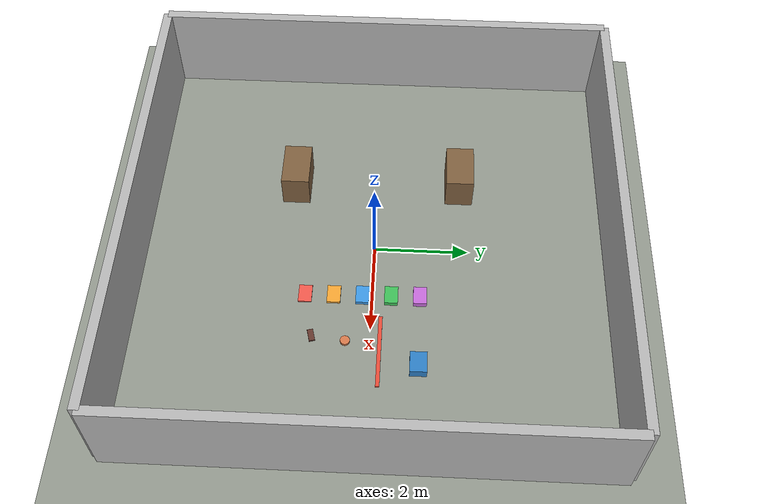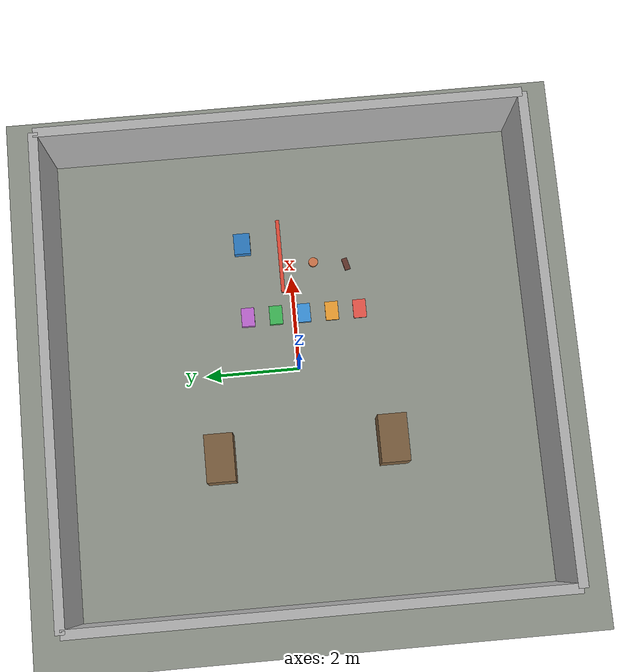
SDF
<?xml version="1.0" ?>
<sdf version="1.10">
  <world name="lidar_camera_obstacle_lab">
    <gravity>0 0 -9.8</gravity>
    <physics type="ode">
      <max_step_size>0.004</max_step_size>
      <real_time_factor>1</real_time_factor>
      <real_time_update_rate>250</real_time_update_rate>
      <max_contacts>20</max_contacts>
    </physics>

    <plugin name="gz::sim::systems::Physics" filename="gz-sim-physics-system"/>
    <plugin name="gz::sim::systems::UserCommands" filename="gz-sim-user-commands-system"/>
    <plugin name="gz::sim::systems::SceneBroadcaster" filename="gz-sim-scene-broadcaster-system"/>
    <plugin name="gz::sim::systems::Sensors" filename="gz-sim-sensors-system">
      <render_engine>ogre2</render_engine>
    </plugin>

    <scene>
      <ambient>0.46 0.46 0.46 1</ambient>
      <background>0.72 0.78 0.86 1</background>
      <shadows>false</shadows>
      <grid>true</grid>
    </scene>

    <light name="lab_sun" type="directional">
      <cast_shadows>false</cast_shadows>
      <pose>0 0 25 0 0 0</pose>
      <diffuse>0.95 0.95 0.95 1</diffuse>
      <specular>0.2 0.2 0.2 1</specular>
      <attenuation>
        <range>220</range>
        <constant>0.9</constant>
        <linear>0.01</linear>
        <quadratic>0.001</quadratic>
      </attenuation>
      <direction>-0.25 0.2 -0.95</direction>
    </light>

    <model name="floor">
      <static>true</static>
      <pose>0 0 0 0 0 0</pose>
      <link name="link">
        <collision name="collision">
          <geometry>
            <plane>
              <normal>0 0 1</normal>
              <size>20 20</size>
            </plane>
          </geometry>
        </collision>
        <visual name="visual">
          <cast_shadows>false</cast_shadows>
          <geometry>
            <plane>
              <normal>0 0 1</normal>
              <size>20 20</size>
            </plane>
          </geometry>
          <material>
            <ambient>0.58 0.60 0.56 1</ambient>
            <diffuse>0.58 0.60 0.56 1</diffuse>
            <specular>0 0 0 1</specular>
          </material>
        </visual>
      </link>
    </model>

    <!-- 10m x 10m room -->
    <model name="wall_north">
      <static>true</static>
      <pose>0 5 1.0 0 0 0</pose>
      <link name="link">
        <collision name="collision"><geometry><box><size>10 0.2 2.0</size></box></geometry></collision>
        <visual name="visual"><geometry><box><size>10 0.2 2.0</size></box></geometry></visual>
      </link>
    </model>
    <model name="wall_south">
      <static>true</static>
      <pose>0 -5 1.0 0 0 0</pose>
      <link name="link">
        <collision name="collision"><geometry><box><size>10 0.2 2.0</size></box></geometry></collision>
        <visual name="visual"><geometry><box><size>10 0.2 2.0</size></box></geometry></visual>
      </link>
    </model>
    <model name="wall_east">
      <static>true</static>
      <pose>5 0 1.0 0 0 0</pose>
      <link name="link">
        <collision name="collision"><geometry><box><size>0.2 10 2.0</size></box></geometry></collision>
        <visual name="visual"><geometry><box><size>0.2 10 2.0</size></box></geometry></visual>
      </link>
    </model>
    <model name="wall_west">
      <static>true</static>
      <pose>-5 0 1.0 0 0 0</pose>
      <link name="link">
        <collision name="collision"><geometry><box><size>0.2 10 2.0</size></box></geometry></collision>
        <visual name="visual"><geometry><box><size>0.2 10 2.0</size></box></geometry></visual>
      </link>
    </model>

    <!-- Reference lane: increasing heights, same footprint -->
    <model name="obs_h03">
      <static>true</static>
      <pose>1.2 -1.4 0.015 0 0 0</pose>
      <link name="link">
        <collision name="collision"><geometry><box><size>0.40 0.28 0.03</size></box></geometry></collision>
        <visual name="visual"><geometry><box><size>0.40 0.28 0.03</size></box></geometry><material><diffuse>0.95 0.35 0.30 1</diffuse></material></visual>
      </link>
    </model>

    <model name="obs_h05">
      <static>true</static>
      <pose>1.2 -0.8 0.025 0 0 0</pose>
      <link name="link">
        <collision name="collision"><geometry><box><size>0.40 0.28 0.05</size></box></geometry></collision>
        <visual name="visual"><geometry><box><size>0.40 0.28 0.05</size></box></geometry><material><diffuse>0.97 0.65 0.20 1</diffuse></material></visual>
      </link>
    </model>

    <model name="obs_h08">
      <static>true</static>
      <pose>1.2 -0.2 0.04 0 0 0</pose>
      <link name="link">
        <collision name="collision"><geometry><box><size>0.40 0.28 0.08</size></box></geometry></collision>
        <visual name="visual"><geometry><box><size>0.40 0.28 0.08</size></box></geometry><material><diffuse>0.24 0.60 0.90 1</diffuse></material></visual>
      </link>
    </model>

    <model name="obs_h10">
      <static>true</static>
      <pose>1.2 0.4 0.05 0 0 0</pose>
      <link name="link">
        <collision name="collision"><geometry><box><size>0.40 0.28 0.10</size></box></geometry></collision>
        <visual name="visual"><geometry><box><size>0.40 0.28 0.10</size></box></geometry><material><diffuse>0.25 0.75 0.35 1</diffuse></material></visual>
      </link>
    </model>

    <model name="obs_h12">
      <static>true</static>
      <pose>1.2 1.0 0.06 0 0 0</pose>
      <link name="link">
        <collision name="collision"><geometry><box><size>0.40 0.28 0.12</size></box></geometry></collision>
        <visual name="visual"><geometry><box><size>0.40 0.28 0.12</size></box></geometry><material><diffuse>0.78 0.42 0.86 1</diffuse></material></visual>
      </link>
    </model>

    <!-- Mixed-shape lane -->
    <model name="shoe_like_low_04">
      <static>true</static>
      <pose>2.2 -1.2 0.02 0 0 0.25</pose>
      <link name="link">
        <collision name="collision"><geometry><box><size>0.26 0.12 0.04</size></box></geometry></collision>
        <visual name="visual"><geometry><box><size>0.26 0.12 0.04</size></box></geometry><material><diffuse>0.40 0.22 0.18 1</diffuse></material></visual>
      </link>
    </model>

    <model name="cylinder_h06">
      <static>true</static>
      <pose>2.3 -0.5 0.03 0 0 0</pose>
      <link name="link">
        <collision name="collision"><geometry><cylinder><radius>0.10</radius><length>0.06</length></cylinder></geometry></collision>
        <visual name="visual"><geometry><cylinder><radius>0.10</radius><length>0.06</length></cylinder></geometry><material><diffuse>0.85 0.48 0.30 1</diffuse></material></visual>
      </link>
    </model>

    <model name="barrier_h04_long">
      <static>true</static>
      <pose>2.5 0.2 0.02 0 0 0</pose>
      <link name="link">
        <collision name="collision"><geometry><box><size>1.60 0.08 0.04</size></box></geometry></collision>
        <visual name="visual"><geometry><box><size>1.60 0.08 0.04</size></box></geometry><material><diffuse>0.92 0.30 0.22 1</diffuse></material></visual>
      </link>
    </model>

    <model name="box_h20">
      <static>true</static>
      <pose>2.8 1.0 0.10 0 0 0</pose>
      <link name="link">
        <collision name="collision"><geometry><box><size>0.45 0.35 0.20</size></box></geometry></collision>
        <visual name="visual"><geometry><box><size>0.45 0.35 0.20</size></box></geometry><material><diffuse>0.18 0.50 0.78 1</diffuse></material></visual>
      </link>
    </model>

    <!-- Navigation references -->
    <model name="table_block_left">
      <static>true</static>
      <pose>-1.8 1.8 0.375 0 0 0</pose>
      <link name="link">
        <collision name="collision"><geometry><box><size>1.0 0.6 0.75</size></box></geometry></collision>
        <visual name="visual"><geometry><box><size>1.0 0.6 0.75</size></box></geometry><material><diffuse>0.50 0.38 0.25 1</diffuse></material></visual>
      </link>
    </model>

    <model name="table_block_right">
      <static>true</static>
      <pose>-1.7 -1.8 0.375 0 0 0</pose>
      <link name="link">
        <collision name="collision"><geometry><box><size>1.0 0.6 0.75</size></box></geometry></collision>
        <visual name="visual"><geometry><box><size>1.0 0.6 0.75</size></box></geometry><material><diffuse>0.50 0.38 0.25 1</diffuse></material></visual>
      </link>
    </model>
  </world>
</sdf>
